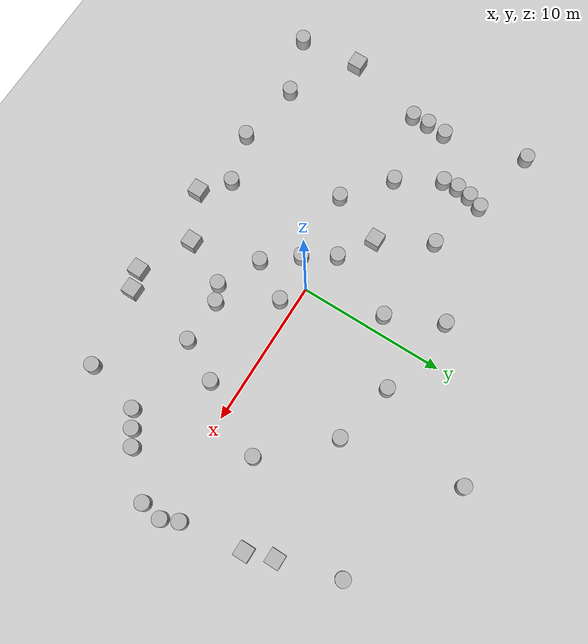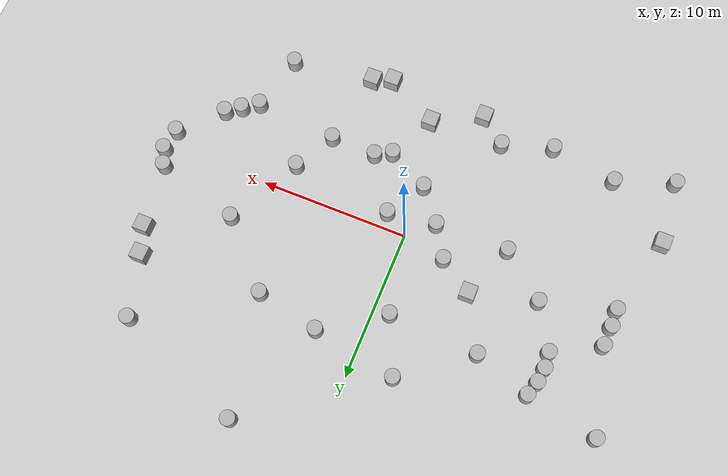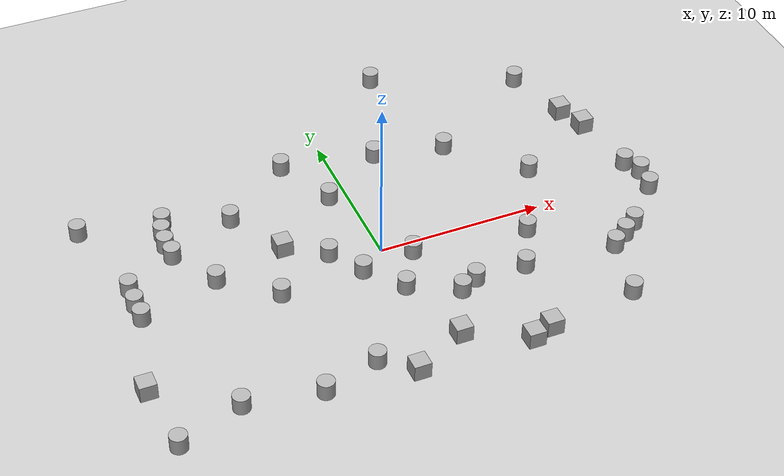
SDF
<sdf version="1.10">
 <world name="empty_world">
  <physics name="1ms" type="ignored">
   <max_step_size>0.001</max_step_size>
   <real_time_factor>1</real_time_factor>
   <real_time_update_rate>1000</real_time_update_rate>
  </physics>
  <plugin name="gz::sim::systems::Physics" filename="gz-sim-physics-system"/>
  <plugin name="gz::sim::systems::Sensors" filename="gz-sim-sensors-system">
   <render_engine>ogre2</render_engine>
  </plugin>
  <plugin name="gz::sim::systems::SceneBroadcaster" filename="gz-sim-scene-broadcaster-system"/>
  <plugin name="gz::sim::systems::UserCommands" filename="gz-sim-user-commands-system"/>
  <gravity>0 0 -9.8000000000000007</gravity>
  <magnetic_field>5.5644999999999998e-06 2.2875799999999999e-05 -4.2388400000000002e-05</magnetic_field>
  <atmosphere type="adiabatic"/>
  <scene>
   <ambient>0.400000006 0.400000006 0.400000006 1</ambient>
   <background>0.699999988 0.699999988 0.699999988 1</background>
   <shadows>true</shadows>
  </scene>
  <model name="ground_plane">
   <static>true</static>
   <link name="link">
    <collision name="collision">
     <geometry><plane><normal>0 0 1</normal><size>100 100</size></plane></geometry>
     <surface><friction><ode><mu>1</mu><mu2>1</mu2></ode></friction></surface>
    </collision>
    <visual name="visual">
     <geometry><plane><normal>0 0 1</normal><size>100 100</size></plane></geometry>
     <material>
      <ambient>0.800000012 0.800000012 0.800000012 1</ambient>
      <diffuse>0.800000012 0.800000012 0.800000012 1</diffuse>
      <specular>0.800000012 0.800000012 0.800000012 1</specular>
     </material>
    </visual>
    <inertial>
     <mass>1</mass>
     <inertia><ixx>1</ixx><ixy>0</ixy><ixz>0</ixz><iyy>1</iyy><iyz>0</iyz><izz>1</izz></inertia>
    </inertial>
   </link>
  </model>
  <model name="cylinder">
   <pose>-15.312493324279785 -9.8559398651123047 0.49999899681693183 5.4237981933856964e-19 2.3181649937731231e-23 -1.4941080318111113e-20</pose>
   <link name="cylinder_link">
    <inertial>
     <inertia>
      <ixx>0.14580000000000001</ixx>
      <ixy>0</ixy>
      <ixz>0</ixz>
      <iyy>0.14580000000000001</iyy>
      <iyz>0</iyz>
      <izz>0.125</izz>
     </inertia>
     <mass>1</mass>
    </inertial>
    <collision name="cylinder_collision">
     <geometry><cylinder><radius>0.5</radius><length>1</length></cylinder></geometry>
    </collision>
    <visual name="cylinder_visual">
     <geometry><cylinder><radius>0.5</radius><length>1</length></cylinder></geometry>
     <material>
      <ambient>0.300000012 0.300000012 0.300000012 1</ambient>
      <diffuse>0.699999988 0.699999988 0.699999988 1</diffuse>
      <specular>1 1 1 1</specular>
     </material>
    </visual>
   </link>
   <static>true</static>
  </model>
  <model name="cylinder_0">
   <pose>-11.220121328600436 5.9150393099316156 0.49999943342976871 -1.3307943374031395e-08 5.3249000792590592e-09 0.24168083264871357</pose>
   <link name="cylinder_link">
    <inertial>
     <inertia>
      <ixx>0.14580000000000001</ixx>
      <ixy>0</ixy>
      <ixz>0</ixz>
      <iyy>0.14580000000000001</iyy>
      <iyz>0</iyz>
      <izz>0.125</izz>
     </inertia>
     <mass>1</mass>
    </inertial>
    <collision name="cylinder_collision">
     <geometry><cylinder><radius>0.5</radius><length>1</length></cylinder></geometry>
    </collision>
    <visual name="cylinder_visual">
     <geometry><cylinder><radius>0.5</radius><length>1</length></cylinder></geometry>
     <material>
      <ambient>0.300000012 0.300000012 0.300000012 1</ambient>
      <diffuse>0.699999988 0.699999988 0.699999988 1</diffuse>
      <specular>1 1 1 1</specular>
     </material>
    </visual>
   </link>
   <static>true</static>
  </model>
  <model name="cylinder_1">
   <pose>-14.309305706024755 2.2093379274785914 0.49999942638036005 3.0199189997714729e-19 2.6338621106579318e-19 -7.1983061060248519e-21</pose>
   <link name="cylinder_link">
    <inertial>
     <inertia>
      <ixx>0.14580000000000001</ixx>
      <ixy>0</ixy>
      <ixz>0</ixz>
      <iyy>0.14580000000000001</iyy>
      <iyz>0</iyz>
      <izz>0.125</izz>
     </inertia>
     <mass>1</mass>
    </inertial>
    <collision name="cylinder_collision">
     <geometry><cylinder><radius>0.5</radius><length>1</length></cylinder></geometry>
    </collision>
    <visual name="cylinder_visual">
     <geometry><cylinder><radius>0.5</radius><length>1</length></cylinder></geometry>
     <material>
      <ambient>0.300000012 0.300000012 0.300000012 1</ambient>
      <diffuse>0.699999988 0.699999988 0.699999988 1</diffuse>
      <specular>1 1 1 1</specular>
     </material>
    </visual>
   </link>
   <static>true</static>
  </model>
  <model name="cylinder_2">
   <pose>-14.371523885993248 0.88192613458914693 0.49999942638036005 -4.5275263853793139e-21 2.13030619442747e-19 -8.5486022152102886e-21</pose>
   <link name="cylinder_link">
    <inertial>
     <inertia>
      <ixx>0.14580000000000001</ixx>
      <ixy>0</ixy>
      <ixz>0</ixz>
      <iyy>0.14580000000000001</iyy>
      <iyz>0</iyz>
      <izz>0.125</izz>
     </inertia>
     <mass>1</mass>
    </inertial>
    <collision name="cylinder_collision">
     <geometry><cylinder><radius>0.5</radius><length>1</length></cylinder></geometry>
    </collision>
    <visual name="cylinder_visual">
     <geometry><cylinder><radius>0.5</radius><length>1</length></cylinder></geometry>
     <material>
      <ambient>0.300000012 0.300000012 0.300000012 1</ambient>
      <diffuse>0.699999988 0.699999988 0.699999988 1</diffuse>
      <specular>1 1 1 1</specular>
     </material>
    </visual>
   </link>
   <static>true</static>
  </model>
  <model name="cylinder_3">
   <pose>-11.344564438082452 4.9228125736940616 0.49999943456472545 2.0714131400809861e-08 -7.5706134078639414e-10 0.023803864057548134</pose>
   <link name="cylinder_link">
    <inertial>
     <inertia>
      <ixx>0.14580000000000001</ixx>
      <ixy>0</ixy>
      <ixz>0</ixz>
      <iyy>0.14580000000000001</iyy>
      <iyz>0</iyz>
      <izz>0.125</izz>
     </inertia>
     <mass>1</mass>
    </inertial>
    <collision name="cylinder_collision">
     <geometry><cylinder><radius>0.5</radius><length>1</length></cylinder></geometry>
    </collision>
    <visual name="cylinder_visual">
     <geometry><cylinder><radius>0.5</radius><length>1</length></cylinder></geometry>
     <material>
      <ambient>0.300000012 0.300000012 0.300000012 1</ambient>
      <diffuse>0.699999988 0.699999988 0.699999988 1</diffuse>
      <specular>1 1 1 1</specular>
     </material>
    </visual>
   </link>
   <static>true</static>
  </model>
  <model name="cylinder_4">
   <pose>-10.904389818685567 6.8742585789667174 0.49999942638036005 4.188353422382012e-19 -1.5833142423400404e-19 -2.1644949924063761e-20</pose>
   <link name="cylinder_link">
    <inertial>
     <inertia>
      <ixx>0.14580000000000001</ixx>
      <ixy>0</ixy>
      <ixz>0</ixz>
      <iyy>0.14580000000000001</iyy>
      <iyz>0</iyz>
      <izz>0.125</izz>
     </inertia>
     <mass>1</mass>
    </inertial>
    <collision name="cylinder_collision">
     <geometry><cylinder><radius>0.5</radius><length>1</length></cylinder></geometry>
    </collision>
    <visual name="cylinder_visual">
     <geometry><cylinder><radius>0.5</radius><length>1</length></cylinder></geometry>
     <material>
      <ambient>0.300000012 0.300000012 0.300000012 1</ambient>
      <diffuse>0.699999988 0.699999988 0.699999988 1</diffuse>
      <specular>1 1 1 1</specular>
     </material>
    </visual>
   </link>
   <static>true</static>
  </model>
  <model name="cylinder_5">
   <pose>-11.256412322778504 3.8866658582086773 0.49999942638036005 1.8894495704477277e-19 2.0637947121385104e-19 -5.7735176003567751e-21</pose>
   <link name="cylinder_link">
    <inertial>
     <inertia>
      <ixx>0.14580000000000001</ixx>
      <ixy>0</ixy>
      <ixz>0</ixz>
      <iyy>0.14580000000000001</iyy>
      <iyz>0</iyz>
      <izz>0.125</izz>
     </inertia>
     <mass>1</mass>
    </inertial>
    <collision name="cylinder_collision">
     <geometry><cylinder><radius>0.5</radius><length>1</length></cylinder></geometry>
    </collision>
    <visual name="cylinder_visual">
     <geometry><cylinder><radius>0.5</radius><length>1</length></cylinder></geometry>
     <material>
      <ambient>0.300000012 0.300000012 0.300000012 1</ambient>
      <diffuse>0.699999988 0.699999988 0.699999988 1</diffuse>
      <specular>1 1 1 1</specular>
     </material>
    </visual>
   </link>
   <static>true</static>
  </model>
  <model name="cylinder_6">
   <pose>-14.346395967900598 -0.28805790901506301 0.49999942638036005 1.1523544816387847e-19 2.5988322500725114e-20 4.3176802434931151e-21</pose>
   <link name="cylinder_link">
    <inertial>
     <inertia>
      <ixx>0.14580000000000001</ixx>
      <ixy>0</ixy>
      <ixz>0</ixz>
      <iyy>0.14580000000000001</iyy>
      <iyz>0</iyz>
      <izz>0.125</izz>
     </inertia>
     <mass>1</mass>
    </inertial>
    <collision name="cylinder_collision">
     <geometry><cylinder><radius>0.5</radius><length>1</length></cylinder></geometry>
    </collision>
    <visual name="cylinder_visual">
     <geometry><cylinder><radius>0.5</radius><length>1</length></cylinder></geometry>
     <material>
      <ambient>0.300000012 0.300000012 0.300000012 1</ambient>
      <diffuse>0.699999988 0.699999988 0.699999988 1</diffuse>
      <specular>1 1 1 1</specular>
     </material>
    </visual>
   </link>
   <static>true</static>
  </model>
  <model name="cylinder_7">
   <pose>-11.460442190247441 -8.4948276412933321 0.49999942638036005 3.3291049749848278e-19 -3.721451360970546e-19 -1.9370175130206356e-20</pose>
   <link name="cylinder_link">
    <inertial>
     <inertia>
      <ixx>0.14580000000000001</ixx>
      <ixy>0</ixy>
      <ixz>0</ixz>
      <iyy>0.14580000000000001</iyy>
      <iyz>0</iyz>
      <izz>0.125</izz>
     </inertia>
     <mass>1</mass>
    </inertial>
    <collision name="cylinder_collision">
     <geometry><cylinder><radius>0.5</radius><length>1</length></cylinder></geometry>
    </collision>
    <visual name="cylinder_visual">
     <geometry><cylinder><radius>0.5</radius><length>1</length></cylinder></geometry>
     <material>
      <ambient>0.300000012 0.300000012 0.300000012 1</ambient>
      <diffuse>0.699999988 0.699999988 0.699999988 1</diffuse>
      <specular>1 1 1 1</specular>
     </material>
    </visual>
   </link>
   <static>true</static>
  </model>
  <model name="cylinder_8">
   <pose>-7.0345263231713684 -9.2360728776802201 0.49999942638036005 1.2820895090300494e-19 -1.5635693902696234e-20 -4.4822749101295984e-21</pose>
   <link name="cylinder_link">
    <inertial>
     <inertia>
      <ixx>0.14580000000000001</ixx>
      <ixy>0</ixy>
      <ixz>0</ixz>
      <iyy>0.14580000000000001</iyy>
      <iyz>0</iyz>
      <izz>0.125</izz>
     </inertia>
     <mass>1</mass>
    </inertial>
    <collision name="cylinder_collision">
     <geometry><cylinder><radius>0.5</radius><length>1</length></cylinder></geometry>
    </collision>
    <visual name="cylinder_visual">
     <geometry><cylinder><radius>0.5</radius><length>1</length></cylinder></geometry>
     <material>
      <ambient>0.300000012 0.300000012 0.300000012 1</ambient>
      <diffuse>0.699999988 0.699999988 0.699999988 1</diffuse>
      <specular>1 1 1 1</specular>
     </material>
    </visual>
   </link>
   <static>true</static>
  </model>
  <model name="cylinder_9">
   <pose>-3.683306174393755 -8.2125394381554617 0.49999942638036005 3.4153387818466797e-19 9.7279937756639807e-20 -2.5254317762133637e-20</pose>
   <link name="cylinder_link">
    <inertial>
     <inertia>
      <ixx>0.14580000000000001</ixx>
      <ixy>0</ixy>
      <ixz>0</ixz>
      <iyy>0.14580000000000001</iyy>
      <iyz>0</iyz>
      <izz>0.125</izz>
     </inertia>
     <mass>1</mass>
    </inertial>
    <collision name="cylinder_collision">
     <geometry><cylinder><radius>0.5</radius><length>1</length></cylinder></geometry>
    </collision>
    <visual name="cylinder_visual">
     <geometry><cylinder><radius>0.5</radius><length>1</length></cylinder></geometry>
     <material>
      <ambient>0.300000012 0.300000012 0.300000012 1</ambient>
      <diffuse>0.699999988 0.699999988 0.699999988 1</diffuse>
      <specular>1 1 1 1</specular>
     </material>
    </visual>
   </link>
   <static>true</static>
  </model>
  <model name="box">
   <pose>-1.9071319246755554 -9.7175234732304752 0.49999999990199806 6.2287739151293738e-22 9.3279666454713669e-22 -3.6315533669320137e-22</pose>
   <link name="box_link">
    <inertial>
     <inertia><ixx>0.16666</ixx><ixy>0</ixy><ixz>0</ixz><iyy>0.16666</iyy><iyz>0</iyz><izz>0.16666</izz></inertia>
     <mass>1</mass>
    </inertial>
    <collision name="box_collision"><geometry><box><size>1 1 1</size></box></geometry></collision>
    <visual name="box_visual">
     <geometry><box><size>1 1 1</size></box></geometry>
     <material>
      <ambient>0.300000012 0.300000012 0.300000012 1</ambient>
      <diffuse>0.699999988 0.699999988 0.699999988 1</diffuse>
      <specular>1 1 1 1</specular>
     </material>
    </visual>
   </link>
   <static>true</static>
  </model>
  <model name="box_0">
   <pose>1.3143740017524519 -8.0630054159306432 0.49999999990199806 6.2287739151293738e-22 9.3279666454713669e-22 -3.6315533669320137e-22</pose>
   <link name="box_link">
    <inertial>
     <inertia><ixx>0.16666</ixx><ixy>0</ixy><ixz>0</ixz><iyy>0.16666</iyy><iyz>0</iyz><izz>0.16666</izz></inertia>
     <mass>1</mass>
    </inertial>
    <collision name="box_collision"><geometry><box><size>1 1 1</size></box></geometry></collision>
    <visual name="box_visual">
     <geometry><box><size>1 1 1</size></box></geometry>
     <material>
      <ambient>0.300000012 0.300000012 0.300000012 1</ambient>
      <diffuse>0.699999988 0.699999988 0.699999988 1</diffuse>
      <specular>1 1 1 1</specular>
     </material>
    </visual>
   </link>
   <static>true</static>
  </model>
  <model name="box_1">
   <pose>4.7802739443610891 -9.9215431055385146 0.49999999990199806 6.2287739151293738e-22 9.3279666454713669e-22 -3.6315533669320137e-22</pose>
   <link name="box_link">
    <inertial>
     <inertia><ixx>0.16666</ixx><ixy>0</ixy><ixz>0</ixz><iyy>0.16666</iyy><iyz>0</iyz><izz>0.16666</izz></inertia>
     <mass>1</mass>
    </inertial>
    <collision name="box_collision"><geometry><box><size>1 1 1</size></box></geometry></collision>
    <visual name="box_visual">
     <geometry><box><size>1 1 1</size></box></geometry>
     <material>
      <ambient>0.300000012 0.300000012 0.300000012 1</ambient>
      <diffuse>0.699999988 0.699999988 0.699999988 1</diffuse>
      <specular>1 1 1 1</specular>
     </material>
    </visual>
   </link>
   <static>true</static>
  </model>
  <model name="box_2">
   <pose>6.0966549051591361 -9.4774072431792717 0.49999999990199806 6.2287739151293738e-22 9.3279666454713669e-22 -3.6315533669320137e-22</pose>
   <link name="box_link">
    <inertial>
     <inertia><ixx>0.16666</ixx><ixy>0</ixy><ixz>0</ixz><iyy>0.16666</iyy><iyz>0</iyz><izz>0.16666</izz></inertia>
     <mass>1</mass>
    </inertial>
    <collision name="box_collision"><geometry><box><size>1 1 1</size></box></geometry></collision>
    <visual name="box_visual">
     <geometry><box><size>1 1 1</size></box></geometry>
     <material>
      <ambient>0.300000012 0.300000012 0.300000012 1</ambient>
      <diffuse>0.699999988 0.699999988 0.699999988 1</diffuse>
      <specular>1 1 1 1</specular>
     </material>
    </visual>
   </link>
   <static>true</static>
  </model>
  <model name="cylinder_10">
   <pose>11.554769313024863 -8.7185889682332665 0.49999942638036005 -1.8030737211678082e-19 8.4508791126108183e-20 -1.6418082615004829e-21</pose>
   <link name="cylinder_link">
    <inertial>
     <inertia>
      <ixx>0.14580000000000001</ixx>
      <ixy>0</ixy>
      <ixz>0</ixz>
      <iyy>0.14580000000000001</iyy>
      <iyz>0</iyz>
      <izz>0.125</izz>
     </inertia>
     <mass>1</mass>
    </inertial>
    <collision name="cylinder_collision">
     <geometry><cylinder><radius>0.5</radius><length>1</length></cylinder></geometry>
    </collision>
    <visual name="cylinder_visual">
     <geometry><cylinder><radius>0.5</radius><length>1</length></cylinder></geometry>
     <material>
      <ambient>0.300000012 0.300000012 0.300000012 1</ambient>
      <diffuse>0.699999988 0.699999988 0.699999988 1</diffuse>
      <specular>1 1 1 1</specular>
     </material>
    </visual>
   </link>
   <static>true</static>
  </model>
  <model name="cylinder_11">
   <pose>12.482869712054178 -4.9592167749359497 0.49999942638036005 3.7858558863050641e-19 -1.1821216507460892e-19 4.2246402971946139e-20</pose>
   <link name="cylinder_link">
    <inertial>
     <inertia>
      <ixx>0.14580000000000001</ixx>
      <ixy>0</ixy>
      <ixz>0</ixz>
      <iyy>0.14580000000000001</iyy>
      <iyz>0</iyz>
      <izz>0.125</izz>
     </inertia>
     <mass>1</mass>
    </inertial>
    <collision name="cylinder_collision">
     <geometry><cylinder><radius>0.5</radius><length>1</length></cylinder></geometry>
    </collision>
    <visual name="cylinder_visual">
     <geometry><cylinder><radius>0.5</radius><length>1</length></cylinder></geometry>
     <material>
      <ambient>0.300000012 0.300000012 0.300000012 1</ambient>
      <diffuse>0.699999988 0.699999988 0.699999988 1</diffuse>
      <specular>1 1 1 1</specular>
     </material>
    </visual>
   </link>
   <static>true</static>
  </model>
  <model name="cylinder_12">
   <pose>13.508562790950991 -4.2638533048424465 0.49999942638036005 -4.4846519203311856e-20 1.8648714881861624e-20 -4.503466177853262e-21</pose>
   <link name="cylinder_link">
    <inertial>
     <inertia>
      <ixx>0.14580000000000001</ixx>
      <ixy>0</ixy>
      <ixz>0</ixz>
      <iyy>0.14580000000000001</iyy>
      <iyz>0</iyz>
      <izz>0.125</izz>
     </inertia>
     <mass>1</mass>
    </inertial>
    <collision name="cylinder_collision">
     <geometry><cylinder><radius>0.5</radius><length>1</length></cylinder></geometry>
    </collision>
    <visual name="cylinder_visual">
     <geometry><cylinder><radius>0.5</radius><length>1</length></cylinder></geometry>
     <material>
      <ambient>0.300000012 0.300000012 0.300000012 1</ambient>
      <diffuse>0.699999988 0.699999988 0.699999988 1</diffuse>
      <specular>1 1 1 1</specular>
     </material>
    </visual>
   </link>
   <static>true</static>
  </model>
  <model name="cylinder_13">
   <pose>16.860312208679751 -1.0982110958333289 0.49999942638036005 -1.593906580365699e-19 -3.3178586176330184e-19 1.9556530481216123e-20</pose>
   <link name="cylinder_link">
    <inertial>
     <inertia>
      <ixx>0.14580000000000001</ixx>
      <ixy>0</ixy>
      <ixz>0</ixz>
      <iyy>0.14580000000000001</iyy>
      <iyz>0</iyz>
      <izz>0.125</izz>
     </inertia>
     <mass>1</mass>
    </inertial>
    <collision name="cylinder_collision">
     <geometry><cylinder><radius>0.5</radius><length>1</length></cylinder></geometry>
    </collision>
    <visual name="cylinder_visual">
     <geometry><cylinder><radius>0.5</radius><length>1</length></cylinder></geometry>
     <material>
      <ambient>0.300000012 0.300000012 0.300000012 1</ambient>
      <diffuse>0.699999988 0.699999988 0.699999988 1</diffuse>
      <specular>1 1 1 1</specular>
     </material>
    </visual>
   </link>
   <static>true</static>
  </model>
  <model name="cylinder_14">
   <pose>17.08056322045163 0.3484323488463108 0.49999942638036005 5.6638200698280342e-19 -7.9026060630808516e-20 3.3649202657275354e-20</pose>
   <link name="cylinder_link">
    <inertial>
     <inertia>
      <ixx>0.14580000000000001</ixx>
      <ixy>0</ixy>
      <ixz>0</ixz>
      <iyy>0.14580000000000001</iyy>
      <iyz>0</iyz>
      <izz>0.125</izz>
     </inertia>
     <mass>1</mass>
    </inertial>
    <collision name="cylinder_collision">
     <geometry><cylinder><radius>0.5</radius><length>1</length></cylinder></geometry>
    </collision>
    <visual name="cylinder_visual">
     <geometry><cylinder><radius>0.5</radius><length>1</length></cylinder></geometry>
     <material>
      <ambient>0.300000012 0.300000012 0.300000012 1</ambient>
      <diffuse>0.699999988 0.699999988 0.699999988 1</diffuse>
      <specular>1 1 1 1</specular>
     </material>
    </visual>
   </link>
   <static>true</static>
  </model>
  <model name="box_3">
   <pose>15.963531148233002 5.7028911650296159 0.49999999990199806 6.2287739151293738e-22 9.3279666454713669e-22 -3.6315533669320137e-22</pose>
   <link name="box_link">
    <inertial>
     <inertia><ixx>0.16666</ixx><ixy>0</ixy><ixz>0</ixz><iyy>0.16666</iyy><iyz>0</iyz><izz>0.16666</izz></inertia>
     <mass>1</mass>
    </inertial>
    <collision name="box_collision"><geometry><box><size>1 1 1</size></box></geometry></collision>
    <visual name="box_visual">
     <geometry><box><size>1 1 1</size></box></geometry>
     <material>
      <ambient>0.300000012 0.300000012 0.300000012 1</ambient>
      <diffuse>0.699999988 0.699999988 0.699999988 1</diffuse>
      <specular>1 1 1 1</specular>
     </material>
    </visual>
   </link>
   <static>true</static>
  </model>
  <model name="cylinder_15">
   <pose>14.171911868806806 11.583450321855643 0.49999942638036005 3.6356478420442536e-20 5.6602206139167063e-20 3.2836479903023428e-21</pose>
   <link name="cylinder_link">
    <inertial>
     <inertia>
      <ixx>0.14580000000000001</ixx>
      <ixy>0</ixy>
      <ixz>0</ixz>
      <iyy>0.14580000000000001</iyy>
      <iyz>0</iyz>
      <izz>0.125</izz>
     </inertia>
     <mass>1</mass>
    </inertial>
    <collision name="cylinder_collision">
     <geometry><cylinder><radius>0.5</radius><length>1</length></cylinder></geometry>
    </collision>
    <visual name="cylinder_visual">
     <geometry><cylinder><radius>0.5</radius><length>1</length></cylinder></geometry>
     <material>
      <ambient>0.300000012 0.300000012 0.300000012 1</ambient>
      <diffuse>0.699999988 0.699999988 0.699999988 1</diffuse>
      <specular>1 1 1 1</specular>
     </material>
    </visual>
   </link>
   <static>true</static>
  </model>
  <model name="cylinder_16">
   <pose>5.6211740215228856 15.020945466008023 0.49999942638036005 -2.0870794399586978e-19 -1.2838173527939018e-19 -8.3754218633310912e-21</pose>
   <link name="cylinder_link">
    <inertial>
     <inertia>
      <ixx>0.14580000000000001</ixx>
      <ixy>0</ixy>
      <ixz>0</ixz>
      <iyy>0.14580000000000001</iyy>
      <iyz>0</iyz>
      <izz>0.125</izz>
     </inertia>
     <mass>1</mass>
    </inertial>
    <collision name="cylinder_collision">
     <geometry><cylinder><radius>0.5</radius><length>1</length></cylinder></geometry>
    </collision>
    <visual name="cylinder_visual">
     <geometry><cylinder><radius>0.5</radius><length>1</length></cylinder></geometry>
     <material>
      <ambient>0.300000012 0.300000012 0.300000012 1</ambient>
      <diffuse>0.699999988 0.699999988 0.699999988 1</diffuse>
      <specular>1 1 1 1</specular>
     </material>
    </visual>
   </link>
   <static>true</static>
  </model>
  <model name="cylinder_17">
   <pose>2.8884274516616664 7.9274625207119023 0.49999942638036005 2.0484194328442791e-19 8.6068028145698667e-20 1.3123709704921624e-20</pose>
   <link name="cylinder_link">
    <inertial>
     <inertia>
      <ixx>0.14580000000000001</ixx>
      <ixy>0</ixy>
      <ixz>0</ixz>
      <iyy>0.14580000000000001</iyy>
      <iyz>0</iyz>
      <izz>0.125</izz>
     </inertia>
     <mass>1</mass>
    </inertial>
    <collision name="cylinder_collision">
     <geometry><cylinder><radius>0.5</radius><length>1</length></cylinder></geometry>
    </collision>
    <visual name="cylinder_visual">
     <geometry><cylinder><radius>0.5</radius><length>1</length></cylinder></geometry>
     <material>
      <ambient>0.300000012 0.300000012 0.300000012 1</ambient>
      <diffuse>0.699999988 0.699999988 0.699999988 1</diffuse>
      <specular>1 1 1 1</specular>
     </material>
    </visual>
   </link>
   <static>true</static>
  </model>
  <model name="cylinder_18">
   <pose>7.1257812021059435 7.037439716979879 0.49999942638036005 -1.6834719050832172e-19 1.7222889553516198e-20 3.0843836670048496e-20</pose>
   <link name="cylinder_link">
    <inertial>
     <inertia>
      <ixx>0.14580000000000001</ixx>
      <ixy>0</ixy>
      <ixz>0</ixz>
      <iyy>0.14580000000000001</iyy>
      <iyz>0</iyz>
      <izz>0.125</izz>
     </inertia>
     <mass>1</mass>
    </inertial>
    <collision name="cylinder_collision">
     <geometry><cylinder><radius>0.5</radius><length>1</length></cylinder></geometry>
    </collision>
    <visual name="cylinder_visual">
     <geometry><cylinder><radius>0.5</radius><length>1</length></cylinder></geometry>
     <material>
      <ambient>0.300000012 0.300000012 0.300000012 1</ambient>
      <diffuse>0.699999988 0.699999988 0.699999988 1</diffuse>
      <specular>1 1 1 1</specular>
     </material>
    </visual>
   </link>
   <static>true</static>
  </model>
  <model name="cylinder_19">
   <pose>8.4310874137184975 -1.7936657388792634 0.49999942638036005 4.1658766343057141e-19 -2.8975873359888802e-19 5.4519468645497422e-21</pose>
   <link name="cylinder_link">
    <inertial>
     <inertia>
      <ixx>0.14580000000000001</ixx>
      <ixy>0</ixy>
      <ixz>0</ixz>
      <iyy>0.14580000000000001</iyy>
      <iyz>0</iyz>
      <izz>0.125</izz>
     </inertia>
     <mass>1</mass>
    </inertial>
    <collision name="cylinder_collision">
     <geometry><cylinder><radius>0.5</radius><length>1</length></cylinder></geometry>
    </collision>
    <visual name="cylinder_visual">
     <geometry><cylinder><radius>0.5</radius><length>1</length></cylinder></geometry>
     <material>
      <ambient>0.300000012 0.300000012 0.300000012 1</ambient>
      <diffuse>0.699999988 0.699999988 0.699999988 1</diffuse>
      <specular>1 1 1 1</specular>
     </material>
    </visual>
   </link>
   <static>true</static>
  </model>
  <model name="cylinder_20">
   <pose>2.8190538692277598 -4.9731793351458586 0.49999943207511921 -2.8551897061415093e-08 1.8239631624325275e-15 1.1320999003186139e-09</pose>
   <link name="cylinder_link">
    <inertial>
     <inertia>
      <ixx>0.14580000000000001</ixx>
      <ixy>0</ixy>
      <ixz>0</ixz>
      <iyy>0.14580000000000001</iyy>
      <iyz>0</iyz>
      <izz>0.125</izz>
     </inertia>
     <mass>1</mass>
    </inertial>
    <collision name="cylinder_collision">
     <geometry><cylinder><radius>0.5</radius><length>1</length></cylinder></geometry>
    </collision>
    <visual name="cylinder_visual">
     <geometry><cylinder><radius>0.5</radius><length>1</length></cylinder></geometry>
     <material>
      <ambient>0.300000012 0.300000012 0.300000012 1</ambient>
      <diffuse>0.699999988 0.699999988 0.699999988 1</diffuse>
      <specular>1 1 1 1</specular>
     </material>
    </visual>
   </link>
   <static>true</static>
  </model>
  <model name="cylinder_21">
   <pose>0.041853042984247857 -3.5195810557978664 0.49999942638036005 -1.2405862113408552e-19 2.8654436741449995e-19 2.7561046687304464e-20</pose>
   <link name="cylinder_link">
    <inertial>
     <inertia>
      <ixx>0.14580000000000001</ixx>
      <ixy>0</ixy>
      <ixz>0</ixz>
      <iyy>0.14580000000000001</iyy>
      <iyz>0</iyz>
      <izz>0.125</izz>
     </inertia>
     <mass>1</mass>
    </inertial>
    <collision name="cylinder_collision">
     <geometry><cylinder><radius>0.5</radius><length>1</length></cylinder></geometry>
    </collision>
    <visual name="cylinder_visual">
     <geometry><cylinder><radius>0.5</radius><length>1</length></cylinder></geometry>
     <material>
      <ambient>0.300000012 0.300000012 0.300000012 1</ambient>
      <diffuse>0.699999988 0.699999988 0.699999988 1</diffuse>
      <specular>1 1 1 1</specular>
     </material>
    </visual>
   </link>
   <static>true</static>
  </model>
  <model name="cylinder_22">
   <pose>-2.9410225842770892 0.64228280854775122 0.49999942638036005 -1.3027027148216392e-19 2.0462735067133731e-19 -2.6248420183831478e-20</pose>
   <link name="cylinder_link">
    <inertial>
     <inertia>
      <ixx>0.14580000000000001</ixx>
      <ixy>0</ixy>
      <ixz>0</ixz>
      <iyy>0.14580000000000001</iyy>
      <iyz>0</iyz>
      <izz>0.125</izz>
     </inertia>
     <mass>1</mass>
    </inertial>
    <collision name="cylinder_collision">
     <geometry><cylinder><radius>0.5</radius><length>1</length></cylinder></geometry>
    </collision>
    <visual name="cylinder_visual">
     <geometry><cylinder><radius>0.5</radius><length>1</length></cylinder></geometry>
     <material>
      <ambient>0.300000012 0.300000012 0.300000012 1</ambient>
      <diffuse>0.699999988 0.699999988 0.699999988 1</diffuse>
      <specular>1 1 1 1</specular>
     </material>
    </visual>
   </link>
   <static>true</static>
  </model>
  <model name="cylinder_23">
   <pose>-1.6667408593252109 -1.3843994777020932 0.49999942638036005 3.133118760708088e-19 1.6925196853596164e-19 4.364467158204328e-22</pose>
   <link name="cylinder_link">
    <inertial>
     <inertia>
      <ixx>0.14580000000000001</ixx>
      <ixy>0</ixy>
      <ixz>0</ixz>
      <iyy>0.14580000000000001</iyy>
      <iyz>0</iyz>
      <izz>0.125</izz>
     </inertia>
     <mass>1</mass>
    </inertial>
    <collision name="cylinder_collision">
     <geometry><cylinder><radius>0.5</radius><length>1</length></cylinder></geometry>
    </collision>
    <visual name="cylinder_visual">
     <geometry><cylinder><radius>0.5</radius><length>1</length></cylinder></geometry>
     <material>
      <ambient>0.300000012 0.300000012 0.300000012 1</ambient>
      <diffuse>0.699999988 0.699999988 0.699999988 1</diffuse>
      <specular>1 1 1 1</specular>
     </material>
    </visual>
   </link>
   <static>true</static>
  </model>
  <model name="cylinder_24">
   <pose>-1.0945646843278947 5.2774217602744713 0.49999943806461272 -5.3251462718800928e-19 -2.6581675314841199e-08 -1.9796437882870038e-17</pose>
   <link name="cylinder_link">
    <inertial>
     <inertia>
      <ixx>0.14580000000000001</ixx>
      <ixy>0</ixy>
      <ixz>0</ixz>
      <iyy>0.14580000000000001</iyy>
      <iyz>0</iyz>
      <izz>0.125</izz>
     </inertia>
     <mass>1</mass>
    </inertial>
    <collision name="cylinder_collision">
     <geometry><cylinder><radius>0.5</radius><length>1</length></cylinder></geometry>
    </collision>
    <visual name="cylinder_visual">
     <geometry><cylinder><radius>0.5</radius><length>1</length></cylinder></geometry>
     <material>
      <ambient>0.300000012 0.300000012 0.300000012 1</ambient>
      <diffuse>0.699999988 0.699999988 0.699999988 1</diffuse>
      <specular>1 1 1 1</specular>
     </material>
    </visual>
   </link>
   <static>true</static>
  </model>
  <model name="cylinder_25">
   <pose>-2.7701914774246785 8.9399327651453788 0.49999942638036005 3.3632680832452562e-19 -2.0541826809127662e-19 -1.2989026028509653e-20</pose>
   <link name="cylinder_link">
    <inertial>
     <inertia>
      <ixx>0.14580000000000001</ixx>
      <ixy>0</ixy>
      <ixz>0</ixz>
      <iyy>0.14580000000000001</iyy>
      <iyz>0</iyz>
      <izz>0.125</izz>
     </inertia>
     <mass>1</mass>
    </inertial>
    <collision name="cylinder_collision">
     <geometry><cylinder><radius>0.5</radius><length>1</length></cylinder></geometry>
    </collision>
    <visual name="cylinder_visual">
     <geometry><cylinder><radius>0.5</radius><length>1</length></cylinder></geometry>
     <material>
      <ambient>0.300000012 0.300000012 0.300000012 1</ambient>
      <diffuse>0.699999988 0.699999988 0.699999988 1</diffuse>
      <specular>1 1 1 1</specular>
     </material>
    </visual>
   </link>
   <static>true</static>
  </model>
  <model name="cylinder_26">
   <pose>-7.142416657495124 5.6169112196638524 0.49999942638036005 2.9155868855677745e-19 5.2251785893331601e-20 -1.927106765635976e-20</pose>
   <link name="cylinder_link">
    <inertial>
     <inertia>
      <ixx>0.14580000000000001</ixx>
      <ixy>0</ixy>
      <ixz>0</ixz>
      <iyy>0.14580000000000001</iyy>
      <iyz>0</iyz>
      <izz>0.125</izz>
     </inertia>
     <mass>1</mass>
    </inertial>
    <collision name="cylinder_collision">
     <geometry><cylinder><radius>0.5</radius><length>1</length></cylinder></geometry>
    </collision>
    <visual name="cylinder_visual">
     <geometry><cylinder><radius>0.5</radius><length>1</length></cylinder></geometry>
     <material>
      <ambient>0.300000012 0.300000012 0.300000012 1</ambient>
      <diffuse>0.699999988 0.699999988 0.699999988 1</diffuse>
      <specular>1 1 1 1</specular>
     </material>
    </visual>
   </link>
   <static>true</static>
  </model>
  <model name="box_4">
   <pose>-5.2195641225095368 2.1318541576614751 0.49999999213490343 2.7656198608327053e-14 -1.1841016062705302e-08 7.7487823212153052e-08</pose>
   <link name="box_link">
    <inertial>
     <inertia><ixx>0.16666</ixx><ixy>0</ixy><ixz>0</ixz><iyy>0.16666</iyy><iyz>0</iyz><izz>0.16666</izz></inertia>
     <mass>1</mass>
    </inertial>
    <collision name="box_collision"><geometry><box><size>1 1 1</size></box></geometry></collision>
    <visual name="box_visual">
     <geometry><box><size>1 1 1</size></box></geometry>
     <material>
      <ambient>0.300000012 0.300000012 0.300000012 1</ambient>
      <diffuse>0.699999988 0.699999988 0.699999988 1</diffuse>
      <specular>1 1 1 1</specular>
     </material>
    </visual>
   </link>
   <static>true</static>
  </model>
  <model name="cylinder_27">
   <pose>-6.5943259253220976 -1.4365735029918119 0.49999942638036005 -1.4219933043614457e-19 -1.8070960645560931e-19 9.131250210680452e-21</pose>
   <link name="cylinder_link">
    <inertial>
     <inertia>
      <ixx>0.14580000000000001</ixx>
      <ixy>0</ixy>
      <ixz>0</ixz>
      <iyy>0.14580000000000001</iyy>
      <iyz>0</iyz>
      <izz>0.125</izz>
     </inertia>
     <mass>1</mass>
    </inertial>
    <collision name="cylinder_collision">
     <geometry><cylinder><radius>0.5</radius><length>1</length></cylinder></geometry>
    </collision>
    <visual name="cylinder_visual">
     <geometry><cylinder><radius>0.5</radius><length>1</length></cylinder></geometry>
     <material>
      <ambient>0.300000012 0.300000012 0.300000012 1</ambient>
      <diffuse>0.699999988 0.699999988 0.699999988 1</diffuse>
      <specular>1 1 1 1</specular>
     </material>
    </visual>
   </link>
   <static>true</static>
  </model>
  <model name="cylinder_28">
   <pose>-9.5793604877523535 1.0214281067197923 0.49999942638036005 1.4109013438538487e-19 2.6669612418829422e-21 -8.6567011098910536e-21</pose>
   <link name="cylinder_link">
    <inertial>
     <inertia>
      <ixx>0.14580000000000001</ixx>
      <ixy>0</ixy>
      <ixz>0</ixz>
      <iyy>0.14580000000000001</iyy>
      <iyz>0</iyz>
      <izz>0.125</izz>
     </inertia>
     <mass>1</mass>
    </inertial>
    <collision name="cylinder_collision">
     <geometry><cylinder><radius>0.5</radius><length>1</length></cylinder></geometry>
    </collision>
    <visual name="cylinder_visual">
     <geometry><cylinder><radius>0.5</radius><length>1</length></cylinder></geometry>
     <material>
      <ambient>0.300000012 0.300000012 0.300000012 1</ambient>
      <diffuse>0.699999988 0.699999988 0.699999988 1</diffuse>
      <specular>1 1 1 1</specular>
     </material>
    </visual>
   </link>
   <static>true</static>
  </model>
  <model name="box_5">
   <pose>-15.72167824901001 -5.6165687763955017 0.49999999990199806 8.1459159541918042e-22 -1.9137820996908089e-21 -2.5957792534099796e-22</pose>
   <link name="box_link">
    <inertial>
     <inertia><ixx>0.16666</ixx><ixy>0</ixy><ixz>0</ixz><iyy>0.16666</iyy><iyz>0</iyz><izz>0.16666</izz></inertia>
     <mass>1</mass>
    </inertial>
    <collision name="box_collision"><geometry><box><size>1 1 1</size></box></geometry></collision>
    <visual name="box_visual">
     <geometry><box><size>1 1 1</size></box></geometry>
     <material>
      <ambient>0.300000012 0.300000012 0.300000012 1</ambient>
      <diffuse>0.699999988 0.699999988 0.699999988 1</diffuse>
      <specular>1 1 1 1</specular>
     </material>
    </visual>
   </link>
   <static>true</static>
  </model>
  <model name="cylinder_29">
   <pose>1.5845088329744179 -0.96252511206635294 0.49999942638036005 -1.1953110699155263e-21 4.2935474661002491e-19 7.9245402542706698e-21</pose>
   <link name="cylinder_link">
    <inertial>
     <inertia>
      <ixx>0.14580000000000001</ixx>
      <ixy>0</ixy>
      <ixz>0</ixz>
      <iyy>0.14580000000000001</iyy>
      <iyz>0</iyz>
      <izz>0.125</izz>
     </inertia>
     <mass>1</mass>
    </inertial>
    <collision name="cylinder_collision">
     <geometry><cylinder><radius>0.5</radius><length>1</length></cylinder></geometry>
    </collision>
    <visual name="cylinder_visual">
     <geometry><cylinder><radius>0.5</radius><length>1</length></cylinder></geometry>
     <material>
      <ambient>0.300000012 0.300000012 0.300000012 1</ambient>
      <diffuse>0.699999988 0.699999988 0.699999988 1</diffuse>
      <specular>1 1 1 1</specular>
     </material>
    </visual>
   </link>
   <static>true</static>
  </model>
  <model name="cylinder_30">
   <pose>6.9840459111824025 -4.5140727992362892 0.49999942638036005 4.5001644145508952e-19 2.4515947219847129e-20 -1.9520362426111212e-20</pose>
   <link name="cylinder_link">
    <inertial>
     <inertia>
      <ixx>0.14580000000000001</ixx>
      <ixy>0</ixy>
      <ixz>0</ixz>
      <iyy>0.14580000000000001</iyy>
      <iyz>0</iyz>
      <izz>0.125</izz>
     </inertia>
     <mass>1</mass>
    </inertial>
    <collision name="cylinder_collision">
     <geometry><cylinder><radius>0.5</radius><length>1</length></cylinder></geometry>
    </collision>
    <visual name="cylinder_visual">
     <geometry><cylinder><radius>0.5</radius><length>1</length></cylinder></geometry>
     <material>
      <ambient>0.300000012 0.300000012 0.300000012 1</ambient>
      <diffuse>0.699999988 0.699999988 0.699999988 1</diffuse>
      <specular>1 1 1 1</specular>
     </material>
    </visual>
   </link>
   <static>true</static>
  </model>
  <model name="cylinder_31">
   <pose>-15.689467581294249 7.8274260723013791 0.50000002505304608 4.628066828717937e-08 4.6307962596369006e-08 0.012721727759545078</pose>
   <link name="cylinder_link">
    <inertial>
     <inertia>
      <ixx>0.14580000000000001</ixx>
      <ixy>0</ixy>
      <ixz>0</ixz>
      <iyy>0.14580000000000001</iyy>
      <iyz>0</iyz>
      <izz>0.125</izz>
     </inertia>
     <mass>1</mass>
    </inertial>
    <collision name="cylinder_collision">
     <geometry><cylinder><radius>0.5</radius><length>1</length></cylinder></geometry>
    </collision>
    <visual name="cylinder_visual">
     <geometry><cylinder><radius>0.5</radius><length>1</length></cylinder></geometry>
     <material>
      <ambient>0.300000012 0.300000012 0.300000012 1</ambient>
      <diffuse>0.699999988 0.699999988 0.699999988 1</diffuse>
      <specular>1 1 1 1</specular>
     </material>
    </visual>
   </link>
   <static>true</static>
  </model>
  <model name="cylinder_32">
   <pose>10.961618495333912 3.0703910085413373 0.49999942638036005 1.4033233593481486e-20 5.275654904109023e-20 7.5462586635315665e-21</pose>
   <link name="cylinder_link">
    <inertial>
     <inertia>
      <ixx>0.14580000000000001</ixx>
      <ixy>0</ixy>
      <ixz>0</ixz>
      <iyy>0.14580000000000001</iyy>
      <iyz>0</iyz>
      <izz>0.125</izz>
     </inertia>
     <mass>1</mass>
    </inertial>
    <collision name="cylinder_collision">
     <geometry><cylinder><radius>0.5</radius><length>1</length></cylinder></geometry>
    </collision>
    <visual name="cylinder_visual">
     <geometry><cylinder><radius>0.5</radius><length>1</length></cylinder></geometry>
     <material>
      <ambient>0.300000012 0.300000012 0.300000012 1</ambient>
      <diffuse>0.699999988 0.699999988 0.699999988 1</diffuse>
      <specular>1 1 1 1</specular>
     </material>
    </visual>
   </link>
   <static>true</static>
  </model>
  <model name="cylinder_33">
   <pose>14.447153815981881 -3.5999988653160395 0.49999942638036005 -9.903948617874809e-20 2.3371150808767474e-19 1.1463314214315729e-20</pose>
   <link name="cylinder_link">
    <inertial>
     <inertia>
      <ixx>0.14580000000000001</ixx>
      <ixy>0</ixy>
      <ixz>0</ixz>
      <iyy>0.14580000000000001</iyy>
      <iyz>0</iyz>
      <izz>0.125</izz>
     </inertia>
     <mass>1</mass>
    </inertial>
    <collision name="cylinder_collision">
     <geometry><cylinder><radius>0.5</radius><length>1</length></cylinder></geometry>
    </collision>
    <visual name="cylinder_visual">
     <geometry><cylinder><radius>0.5</radius><length>1</length></cylinder></geometry>
     <material>
      <ambient>0.300000012 0.300000012 0.300000012 1</ambient>
      <diffuse>0.699999988 0.699999988 0.699999988 1</diffuse>
      <specular>1 1 1 1</specular>
     </material>
    </visual>
   </link>
   <static>true</static>
  </model>
  <model name="cylinder_34">
   <pose>16.58103453667897 1.4353393590217376 0.49999942638036005 4.9710457477279979e-20 -1.1533150460362717e-19 1.2593312955419655e-20</pose>
   <link name="cylinder_link">
    <inertial>
     <inertia>
      <ixx>0.14580000000000001</ixx>
      <ixy>0</ixy>
      <ixz>0</ixz>
      <iyy>0.14580000000000001</iyy>
      <iyz>0</iyz>
      <izz>0.125</izz>
     </inertia>
     <mass>1</mass>
    </inertial>
    <collision name="cylinder_collision">
     <geometry><cylinder><radius>0.5</radius><length>1</length></cylinder></geometry>
    </collision>
    <visual name="cylinder_visual">
     <geometry><cylinder><radius>0.5</radius><length>1</length></cylinder></geometry>
     <material>
      <ambient>0.300000012 0.300000012 0.300000012 1</ambient>
      <diffuse>0.699999988 0.699999988 0.699999988 1</diffuse>
      <specular>1 1 1 1</specular>
     </material>
    </visual>
   </link>
   <static>true</static>
  </model>
  <model name="box_6">
   <pose>15.319002915578672 7.512052468489518 0.49999999990199806 6.2287739151293738e-22 9.3279666454713669e-22 -3.6315533669320137e-22</pose>
   <link name="box_link">
    <inertial>
     <inertia><ixx>0.16666</ixx><ixy>0</ixy><ixz>0</ixz><iyy>0.16666</iyy><iyz>0</iyz><izz>0.16666</izz></inertia>
     <mass>1</mass>
    </inertial>
    <collision name="box_collision"><geometry><box><size>1 1 1</size></box></geometry></collision>
    <visual name="box_visual">
     <geometry><box><size>1 1 1</size></box></geometry>
     <material>
      <ambient>0.300000012 0.300000012 0.300000012 1</ambient>
      <diffuse>0.699999988 0.699999988 0.699999988 1</diffuse>
      <specular>1 1 1 1</specular>
     </material>
    </visual>
   </link>
   <static>true</static>
  </model>
  <model name="cylinder_35">
   <pose>3.912271978369545 -4.4258482572201974 0.49999942638036005 6.9000331112683158e-20 -7.7896600459868558e-21 1.6219979011237461e-20</pose>
   <link name="cylinder_link">
    <inertial>
     <inertia>
      <ixx>0.14580000000000001</ixx>
      <ixy>0</ixy>
      <ixz>0</ixz>
      <iyy>0.14580000000000001</iyy>
      <iyz>0</iyz>
      <izz>0.125</izz>
     </inertia>
     <mass>1</mass>
    </inertial>
    <collision name="cylinder_collision">
     <geometry><cylinder><radius>0.5</radius><length>1</length></cylinder></geometry>
    </collision>
    <visual name="cylinder_visual">
     <geometry><cylinder><radius>0.5</radius><length>1</length></cylinder></geometry>
     <material>
      <ambient>0.300000012 0.300000012 0.300000012 1</ambient>
      <diffuse>0.699999988 0.699999988 0.699999988 1</diffuse>
      <specular>1 1 1 1</specular>
     </material>
    </visual>
   </link>
   <static>true</static>
  </model>
  <light name="sun" type="directional">
   <pose>0 0 10 0 0 0</pose>
   <intensity>1</intensity>
   <direction>-0.5 0.10000000000000001 -0.90000000000000002</direction>
   <diffuse>0.800000012 0.800000012 0.800000012 1</diffuse>
   <specular>0.200000003 0.200000003 0.200000003 1</specular>
   <attenuation>
    <range>1000</range>
    <linear>0.01</linear>
    <constant>0.90000000000000002</constant>
    <quadratic>0.001</quadratic>
   </attenuation>
   <spot><inner_angle>0</inner_angle><outer_angle>0</outer_angle><falloff>0</falloff></spot>
  </light>
 </world>
</sdf>
